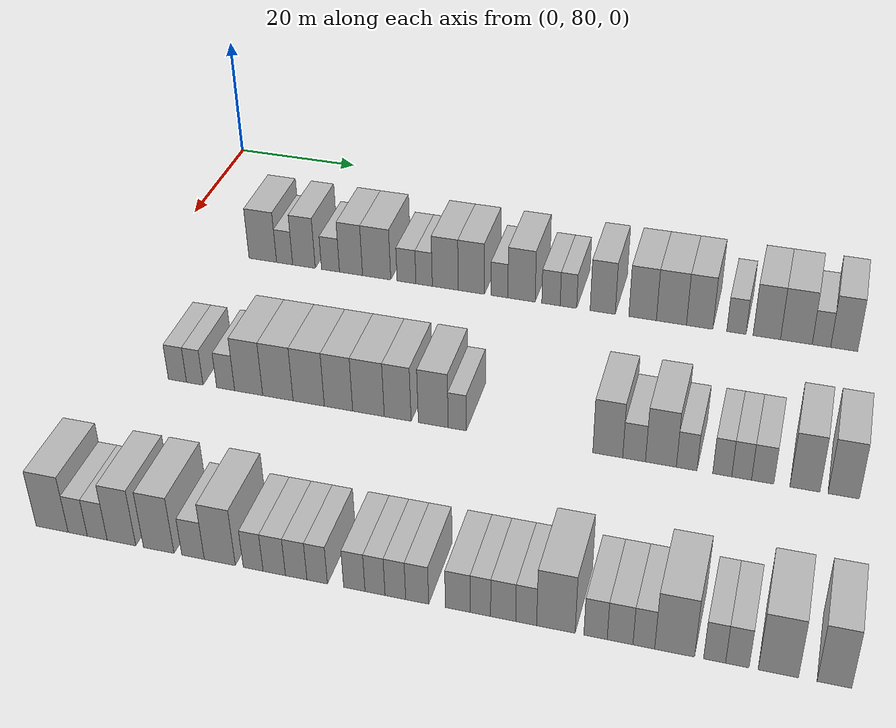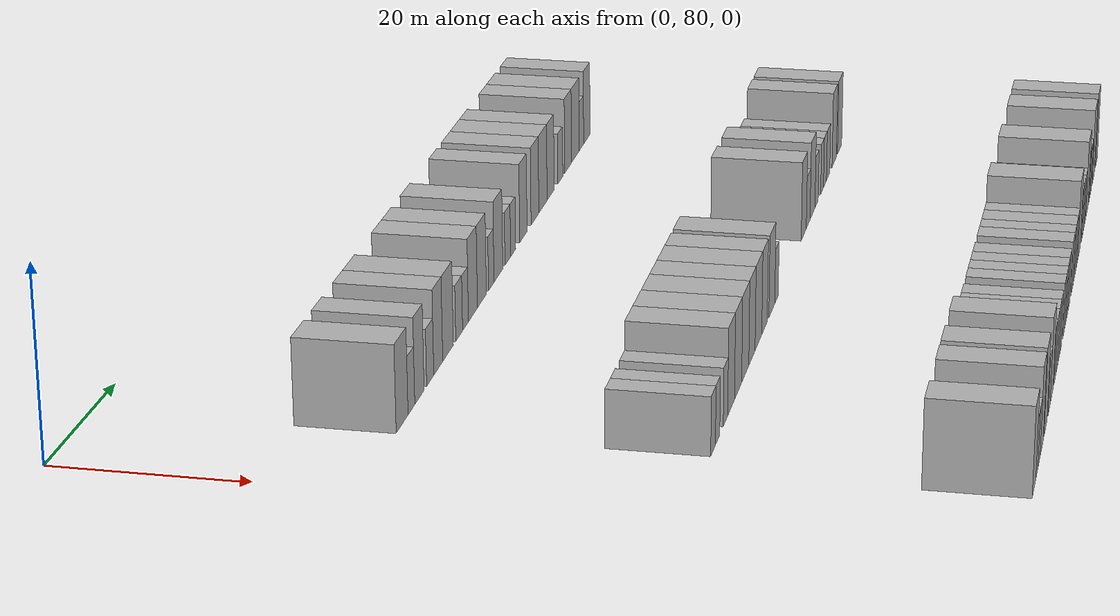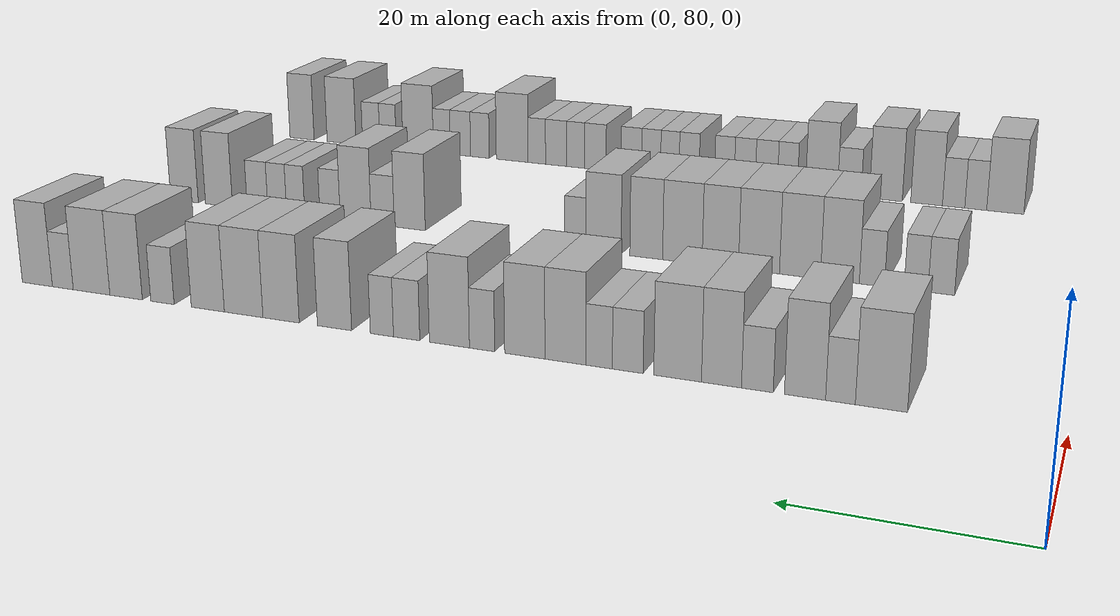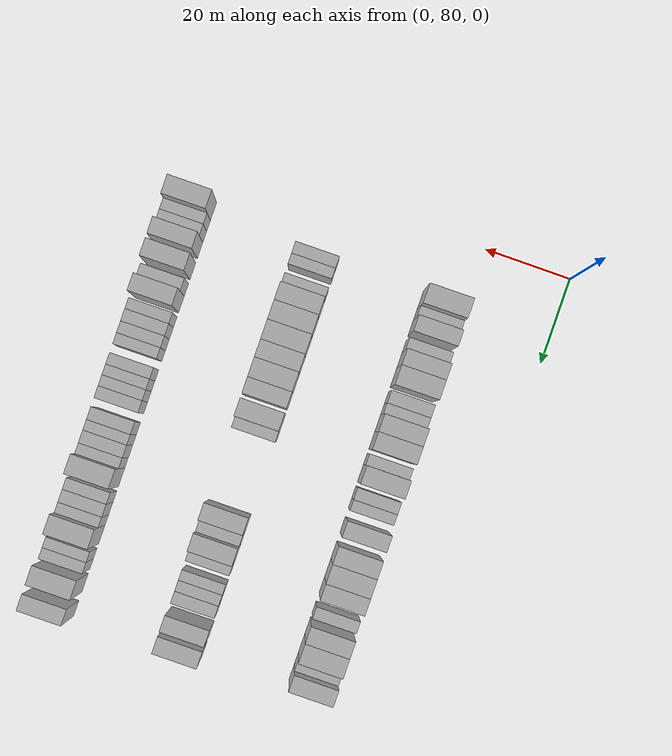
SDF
<sdf version="1.6">
 <world name="default">
  <model name="building_97">
   <static>1</static>
   <pose>25.0000 95.4929 0 0.000000 0.000000 0.000000</pose>
   <link name="link">
    <pose>0 0 4.50 0 0 0</pose>
    <collision name="collision"><geometry><box><size>10.0000 4.4815 9.0000</size></box></geometry></collision>
    <visual name="visual">
     <cast_shadows>0</cast_shadows>
     <geometry><box><size>10.0000 4.4815 9.0000</size></box></geometry>
     <material>
      <script>
       <uri>model://HANNAS_wall/materials/scripts</uri>
       <uri>model://HANNAS_wall/materials/textures</uri>
       <name>vrc/HANNAS_wall</name>
      </script>
     </material>
    </visual>
   </link>
  </model>
  <model name="building_98">
   <static>1</static>
   <pose>25.0000 99.0332 0 0.000000 0.000000 0.000000</pose>
   <link name="link">
    <pose>0 0 3.00 0 0 0</pose>
    <collision name="collision"><geometry><box><size>10.0000 2.5991 6.0000</size></box></geometry></collision>
    <visual name="visual">
     <cast_shadows>0</cast_shadows>
     <geometry><box><size>10.0000 2.5991 6.0000</size></box></geometry>
     <material>
      <script>
       <uri>model://HANNAS_wall/materials/scripts</uri>
       <uri>model://HANNAS_wall/materials/textures</uri>
       <name>vrc/HANNAS_wall</name>
      </script>
     </material>
    </visual>
   </link>
  </model>
  <model name="building_99">
   <static>1</static>
   <pose>25.0000 102.1553 0 0.000000 0.000000 0.000000</pose>
   <link name="link">
    <pose>0 0 4.50 0 0 0</pose>
    <collision name="collision"><geometry><box><size>10.0000 3.6450 9.0000</size></box></geometry></collision>
    <visual name="visual">
     <cast_shadows>0</cast_shadows>
     <geometry><box><size>10.0000 3.6450 9.0000</size></box></geometry>
     <material>
      <script>
       <uri>model://HANNAS_wall/materials/scripts</uri>
       <uri>model://HANNAS_wall/materials/textures</uri>
       <name>vrc/HANNAS_wall</name>
      </script>
     </material>
    </visual>
   </link>
  </model>
  <model name="building_100">
   <static>1</static>
   <pose>25.0000 106.4135 0 0.000000 0.000000 0.000000</pose>
   <link name="link">
    <pose>0 0 3.00 0 0 0</pose>
    <collision name="collision"><geometry><box><size>10.0000 2.8715 6.0000</size></box></geometry></collision>
    <visual name="visual">
     <cast_shadows>0</cast_shadows>
     <geometry><box><size>10.0000 2.8715 6.0000</size></box></geometry>
     <material>
      <script>
       <uri>model://HANNAS_wall/materials/scripts</uri>
       <uri>model://HANNAS_wall/materials/textures</uri>
       <name>vrc/HANNAS_wall</name>
      </script>
     </material>
    </visual>
   </link>
  </model>
  <model name="building_101">
   <static>1</static>
   <pose>25.0000 109.6818 0 0.000000 0.000000 0.000000</pose>
   <link name="link">
    <pose>0 0 4.50 0 0 0</pose>
    <collision name="collision"><geometry><box><size>10.0000 3.6650 9.0000</size></box></geometry></collision>
    <visual name="visual">
     <cast_shadows>0</cast_shadows>
     <geometry><box><size>10.0000 3.6650 9.0000</size></box></geometry>
     <material>
      <script>
       <uri>model://HANNAS_wall/materials/scripts</uri>
       <uri>model://HANNAS_wall/materials/textures</uri>
       <name>vrc/HANNAS_wall</name>
      </script>
     </material>
    </visual>
   </link>
  </model>
  <model name="building_102">
   <static>1</static>
   <pose>25.0000 113.7404 0 0.000000 0.000000 0.000000</pose>
   <link name="link">
    <pose>0 0 4.50 0 0 0</pose>
    <collision name="collision"><geometry><box><size>10.0000 4.4522 9.0000</size></box></geometry></collision>
    <visual name="visual">
     <cast_shadows>0</cast_shadows>
     <geometry><box><size>10.0000 4.4522 9.0000</size></box></geometry>
     <material>
      <script>
       <uri>model://HANNAS_wall/materials/scripts</uri>
       <uri>model://HANNAS_wall/materials/textures</uri>
       <name>vrc/HANNAS_wall</name>
      </script>
     </material>
    </visual>
   </link>
  </model>
  <model name="building_103">
   <static>1</static>
   <pose>25.0000 118.4379 0 0.000000 0.000000 0.000000</pose>
   <link name="link">
    <pose>0 0 3.00 0 0 0</pose>
    <collision name="collision"><geometry><box><size>10.0000 2.9428 6.0000</size></box></geometry></collision>
    <visual name="visual">
     <cast_shadows>0</cast_shadows>
     <geometry><box><size>10.0000 2.9428 6.0000</size></box></geometry>
     <material>
      <script>
       <uri>model://HANNAS_wall/materials/scripts</uri>
       <uri>model://HANNAS_wall/materials/textures</uri>
       <name>vrc/HANNAS_wall</name>
      </script>
     </material>
    </visual>
   </link>
  </model>
  <model name="building_104">
   <static>1</static>
   <pose>25.0000 121.1843 0 0.000000 0.000000 0.000000</pose>
   <link name="link">
    <pose>0 0 3.00 0 0 0</pose>
    <collision name="collision"><geometry><box><size>10.0000 2.5500 6.0000</size></box></geometry></collision>
    <visual name="visual">
     <cast_shadows>0</cast_shadows>
     <geometry><box><size>10.0000 2.5500 6.0000</size></box></geometry>
     <material>
      <script>
       <uri>model://HANNAS_wall/materials/scripts</uri>
       <uri>model://HANNAS_wall/materials/textures</uri>
       <name>vrc/HANNAS_wall</name>
      </script>
     </material>
    </visual>
   </link>
  </model>
  <model name="building_105">
   <static>1</static>
   <pose>25.0000 124.4643 0 0.000000 0.000000 0.000000</pose>
   <link name="link">
    <pose>0 0 4.50 0 0 0</pose>
    <collision name="collision"><geometry><box><size>10.0000 4.0100 9.0000</size></box></geometry></collision>
    <visual name="visual">
     <cast_shadows>0</cast_shadows>
     <geometry><box><size>10.0000 4.0100 9.0000</size></box></geometry>
     <material>
      <script>
       <uri>model://HANNAS_wall/materials/scripts</uri>
       <uri>model://HANNAS_wall/materials/textures</uri>
       <name>vrc/HANNAS_wall</name>
      </script>
     </material>
    </visual>
   </link>
  </model>
  <model name="building_106">
   <static>1</static>
   <pose>25.0000 128.4780 0 0.000000 0.000000 0.000000</pose>
   <link name="link">
    <pose>0 0 4.50 0 0 0</pose>
    <collision name="collision"><geometry><box><size>10.0000 4.0174 9.0000</size></box></geometry></collision>
    <visual name="visual">
     <cast_shadows>0</cast_shadows>
     <geometry><box><size>10.0000 4.0174 9.0000</size></box></geometry>
     <material>
      <script>
       <uri>model://HANNAS_wall/materials/scripts</uri>
       <uri>model://HANNAS_wall/materials/textures</uri>
       <name>vrc/HANNAS_wall</name>
      </script>
     </material>
    </visual>
   </link>
  </model>
  <model name="building_107">
   <static>1</static>
   <pose>25.0000 132.7698 0 0.000000 0.000000 0.000000</pose>
   <link name="link">
    <pose>0 0 3.00 0 0 0</pose>
    <collision name="collision"><geometry><box><size>10.0000 2.5663 6.0000</size></box></geometry></collision>
    <visual name="visual">
     <cast_shadows>0</cast_shadows>
     <geometry><box><size>10.0000 2.5663 6.0000</size></box></geometry>
     <material>
      <script>
       <uri>model://HANNAS_wall/materials/scripts</uri>
       <uri>model://HANNAS_wall/materials/textures</uri>
       <name>vrc/HANNAS_wall</name>
      </script>
     </material>
    </visual>
   </link>
  </model>
  <model name="building_108">
   <static>1</static>
   <pose>25.0000 136.1165 0 0.000000 0.000000 0.000000</pose>
   <link name="link">
    <pose>0 0 4.50 0 0 0</pose>
    <collision name="collision"><geometry><box><size>10.0000 4.1270 9.0000</size></box></geometry></collision>
    <visual name="visual">
     <cast_shadows>0</cast_shadows>
     <geometry><box><size>10.0000 4.1270 9.0000</size></box></geometry>
     <material>
      <script>
       <uri>model://HANNAS_wall/materials/scripts</uri>
       <uri>model://HANNAS_wall/materials/textures</uri>
       <name>vrc/HANNAS_wall</name>
      </script>
     </material>
    </visual>
   </link>
  </model>
  <model name="building_109">
   <static>1</static>
   <pose>25.0000 140.5596 0 0.000000 0.000000 0.000000</pose>
   <link name="link">
    <pose>0 0 3.00 0 0 0</pose>
    <collision name="collision"><geometry><box><size>10.0000 2.7591 6.0000</size></box></geometry></collision>
    <visual name="visual">
     <cast_shadows>0</cast_shadows>
     <geometry><box><size>10.0000 2.7591 6.0000</size></box></geometry>
     <material>
      <script>
       <uri>model://HANNAS_wall/materials/scripts</uri>
       <uri>model://HANNAS_wall/materials/textures</uri>
       <name>vrc/HANNAS_wall</name>
      </script>
     </material>
    </visual>
   </link>
  </model>
  <model name="building_110">
   <static>1</static>
   <pose>25.0000 143.1696 0 0.000000 0.000000 0.000000</pose>
   <link name="link">
    <pose>0 0 3.00 0 0 0</pose>
    <collision name="collision"><geometry><box><size>10.0000 2.4609 6.0000</size></box></geometry></collision>
    <visual name="visual">
     <cast_shadows>0</cast_shadows>
     <geometry><box><size>10.0000 2.4609 6.0000</size></box></geometry>
     <material>
      <script>
       <uri>model://HANNAS_wall/materials/scripts</uri>
       <uri>model://HANNAS_wall/materials/textures</uri>
       <name>vrc/HANNAS_wall</name>
      </script>
     </material>
    </visual>
   </link>
  </model>
  <model name="building_111">
   <static>1</static>
   <pose>25.0000 148.2564 0 0.000000 0.000000 0.000000</pose>
   <link name="link">
    <pose>0 0 4.50 0 0 0</pose>
    <collision name="collision"><geometry><box><size>10.0000 3.7127 9.0000</size></box></geometry></collision>
    <visual name="visual">
     <cast_shadows>0</cast_shadows>
     <geometry><box><size>10.0000 3.7127 9.0000</size></box></geometry>
     <material>
      <script>
       <uri>model://HANNAS_wall/materials/scripts</uri>
       <uri>model://HANNAS_wall/materials/textures</uri>
       <name>vrc/HANNAS_wall</name>
      </script>
     </material>
    </visual>
   </link>
  </model>
  <model name="building_112">
   <static>1</static>
   <pose>25.0000 154.1282 0 0.000000 0.000000 0.000000</pose>
   <link name="link">
    <pose>0 0 4.50 0 0 0</pose>
    <collision name="collision"><geometry><box><size>10.0000 4.0309 9.0000</size></box></geometry></collision>
    <visual name="visual">
     <cast_shadows>0</cast_shadows>
     <geometry><box><size>10.0000 4.0309 9.0000</size></box></geometry>
     <material>
      <script>
       <uri>model://HANNAS_wall/materials/scripts</uri>
       <uri>model://HANNAS_wall/materials/textures</uri>
       <name>vrc/HANNAS_wall</name>
      </script>
     </material>
    </visual>
   </link>
  </model>
  <model name="building_113">
   <static>1</static>
   <pose>25.0000 158.3235 0 0.000000 0.000000 0.000000</pose>
   <link name="link">
    <pose>0 0 4.50 0 0 0</pose>
    <collision name="collision"><geometry><box><size>10.0000 4.3597 9.0000</size></box></geometry></collision>
    <visual name="visual">
     <cast_shadows>0</cast_shadows>
     <geometry><box><size>10.0000 4.3597 9.0000</size></box></geometry>
     <material>
      <script>
       <uri>model://HANNAS_wall/materials/scripts</uri>
       <uri>model://HANNAS_wall/materials/textures</uri>
       <name>vrc/HANNAS_wall</name>
      </script>
     </material>
    </visual>
   </link>
  </model>
  <model name="building_114">
   <static>1</static>
   <pose>25.0000 162.4061 0 0.000000 0.000000 0.000000</pose>
   <link name="link">
    <pose>0 0 4.50 0 0 0</pose>
    <collision name="collision"><geometry><box><size>10.0000 3.8055 9.0000</size></box></geometry></collision>
    <visual name="visual">
     <cast_shadows>0</cast_shadows>
     <geometry><box><size>10.0000 3.8055 9.0000</size></box></geometry>
     <material>
      <script>
       <uri>model://HANNAS_wall/materials/scripts</uri>
       <uri>model://HANNAS_wall/materials/textures</uri>
       <name>vrc/HANNAS_wall</name>
      </script>
     </material>
    </visual>
   </link>
  </model>
  <model name="building_115">
   <static>1</static>
   <pose>25.0000 167.6796 0 0.000000 0.000000 0.000000</pose>
   <link name="link">
    <pose>0 0 3.00 0 0 0</pose>
    <collision name="collision"><geometry><box><size>10.0000 2.7415 6.0000</size></box></geometry></collision>
    <visual name="visual">
     <cast_shadows>0</cast_shadows>
     <geometry><box><size>10.0000 2.7415 6.0000</size></box></geometry>
     <material>
      <script>
       <uri>model://HANNAS_wall/materials/scripts</uri>
       <uri>model://HANNAS_wall/materials/textures</uri>
       <name>vrc/HANNAS_wall</name>
      </script>
     </material>
    </visual>
   </link>
  </model>
  <model name="building_116">
   <static>1</static>
   <pose>25.0000 171.9883 0 0.000000 0.000000 0.000000</pose>
   <link name="link">
    <pose>0 0 4.50 0 0 0</pose>
    <collision name="collision"><geometry><box><size>10.0000 3.8760 9.0000</size></box></geometry></collision>
    <visual name="visual">
     <cast_shadows>0</cast_shadows>
     <geometry><box><size>10.0000 3.8760 9.0000</size></box></geometry>
     <material>
      <script>
       <uri>model://HANNAS_wall/materials/scripts</uri>
       <uri>model://HANNAS_wall/materials/textures</uri>
       <name>vrc/HANNAS_wall</name>
      </script>
     </material>
    </visual>
   </link>
  </model>
  <model name="building_117">
   <static>1</static>
   <pose>25.0000 176.1489 0 0.000000 0.000000 0.000000</pose>
   <link name="link">
    <pose>0 0 4.50 0 0 0</pose>
    <collision name="collision"><geometry><box><size>10.0000 4.4451 9.0000</size></box></geometry></collision>
    <visual name="visual">
     <cast_shadows>0</cast_shadows>
     <geometry><box><size>10.0000 4.4451 9.0000</size></box></geometry>
     <material>
      <script>
       <uri>model://HANNAS_wall/materials/scripts</uri>
       <uri>model://HANNAS_wall/materials/textures</uri>
       <name>vrc/HANNAS_wall</name>
      </script>
     </material>
    </visual>
   </link>
  </model>
  <model name="building_118">
   <static>1</static>
   <pose>25.0000 179.6565 0 0.000000 0.000000 0.000000</pose>
   <link name="link">
    <pose>0 0 3.00 0 0 0</pose>
    <collision name="collision"><geometry><box><size>10.0000 2.5702 6.0000</size></box></geometry></collision>
    <visual name="visual">
     <cast_shadows>0</cast_shadows>
     <geometry><box><size>10.0000 2.5702 6.0000</size></box></geometry>
     <material>
      <script>
       <uri>model://HANNAS_wall/materials/scripts</uri>
       <uri>model://HANNAS_wall/materials/textures</uri>
       <name>vrc/HANNAS_wall</name>
      </script>
     </material>
    </visual>
   </link>
  </model>
  <model name="building_119">
   <static>1</static>
   <pose>25.0000 182.8142 0 0.000000 0.000000 0.000000</pose>
   <link name="link">
    <pose>0 0 4.50 0 0 0</pose>
    <collision name="collision"><geometry><box><size>10.0000 3.7452 9.0000</size></box></geometry></collision>
    <visual name="visual">
     <cast_shadows>0</cast_shadows>
     <geometry><box><size>10.0000 3.7452 9.0000</size></box></geometry>
     <material>
      <script>
       <uri>model://HANNAS_wall/materials/scripts</uri>
       <uri>model://HANNAS_wall/materials/textures</uri>
       <name>vrc/HANNAS_wall</name>
      </script>
     </material>
    </visual>
   </link>
  </model>
  <model name="building_237">
   <static>1</static>
   <pose>55.0000 94.8463 0 0.000000 0.000000 0.000000</pose>
   <link name="link">
    <pose>0 0 3.00 0 0 0</pose>
    <collision name="collision"><geometry><box><size>10.0000 2.6816 6.0000</size></box></geometry></collision>
    <visual name="visual">
     <cast_shadows>0</cast_shadows>
     <geometry><box><size>10.0000 2.6816 6.0000</size></box></geometry>
     <material>
      <script>
       <uri>model://HANNAS_wall/materials/scripts</uri>
       <uri>model://HANNAS_wall/materials/textures</uri>
       <name>vrc/HANNAS_wall</name>
      </script>
     </material>
    </visual>
   </link>
  </model>
  <model name="building_238">
   <static>1</static>
   <pose>55.0000 97.4032 0 0.000000 0.000000 0.000000</pose>
   <link name="link">
    <pose>0 0 3.00 0 0 0</pose>
    <collision name="collision"><geometry><box><size>10.0000 2.4321 6.0000</size></box></geometry></collision>
    <visual name="visual">
     <cast_shadows>0</cast_shadows>
     <geometry><box><size>10.0000 2.4321 6.0000</size></box></geometry>
     <material>
      <script>
       <uri>model://HANNAS_wall/materials/scripts</uri>
       <uri>model://HANNAS_wall/materials/textures</uri>
       <name>vrc/HANNAS_wall</name>
      </script>
     </material>
    </visual>
   </link>
  </model>
  <model name="building_239">
   <static>1</static>
   <pose>55.0000 101.9302 0 0.000000 0.000000 0.000000</pose>
   <link name="link">
    <pose>0 0 3.00 0 0 0</pose>
    <collision name="collision"><geometry><box><size>10.0000 2.6219 6.0000</size></box></geometry></collision>
    <visual name="visual">
     <cast_shadows>0</cast_shadows>
     <geometry><box><size>10.0000 2.6219 6.0000</size></box></geometry>
     <material>
      <script>
       <uri>model://HANNAS_wall/materials/scripts</uri>
       <uri>model://HANNAS_wall/materials/textures</uri>
       <name>vrc/HANNAS_wall</name>
      </script>
     </material>
    </visual>
   </link>
  </model>
  <model name="building_240">
   <static>1</static>
   <pose>55.0000 105.2764 0 0.000000 0.000000 0.000000</pose>
   <link name="link">
    <pose>0 0 4.50 0 0 0</pose>
    <collision name="collision"><geometry><box><size>10.0000 4.0706 9.0000</size></box></geometry></collision>
    <visual name="visual">
     <cast_shadows>0</cast_shadows>
     <geometry><box><size>10.0000 4.0706 9.0000</size></box></geometry>
     <material>
      <script>
       <uri>model://HANNAS_wall/materials/scripts</uri>
       <uri>model://HANNAS_wall/materials/textures</uri>
       <name>vrc/HANNAS_wall</name>
      </script>
     </material>
    </visual>
   </link>
  </model>
  <model name="building_241">
   <static>1</static>
   <pose>55.0000 109.4968 0 0.000000 0.000000 0.000000</pose>
   <link name="link">
    <pose>0 0 4.50 0 0 0</pose>
    <collision name="collision"><geometry><box><size>10.0000 4.3702 9.0000</size></box></geometry></collision>
    <visual name="visual">
     <cast_shadows>0</cast_shadows>
     <geometry><box><size>10.0000 4.3702 9.0000</size></box></geometry>
     <material>
      <script>
       <uri>model://HANNAS_wall/materials/scripts</uri>
       <uri>model://HANNAS_wall/materials/textures</uri>
       <name>vrc/HANNAS_wall</name>
      </script>
     </material>
    </visual>
   </link>
  </model>
  <model name="building_242">
   <static>1</static>
   <pose>55.0000 113.9034 0 0.000000 0.000000 0.000000</pose>
   <link name="link">
    <pose>0 0 4.50 0 0 0</pose>
    <collision name="collision"><geometry><box><size>10.0000 4.4429 9.0000</size></box></geometry></collision>
    <visual name="visual">
     <cast_shadows>0</cast_shadows>
     <geometry><box><size>10.0000 4.4429 9.0000</size></box></geometry>
     <material>
      <script>
       <uri>model://HANNAS_wall/materials/scripts</uri>
       <uri>model://HANNAS_wall/materials/textures</uri>
       <name>vrc/HANNAS_wall</name>
      </script>
     </material>
    </visual>
   </link>
  </model>
  <model name="building_243">
   <static>1</static>
   <pose>55.0000 118.1273 0 0.000000 0.000000 0.000000</pose>
   <link name="link">
    <pose>0 0 4.50 0 0 0</pose>
    <collision name="collision"><geometry><box><size>10.0000 4.0051 9.0000</size></box></geometry></collision>
    <visual name="visual">
     <cast_shadows>0</cast_shadows>
     <geometry><box><size>10.0000 4.0051 9.0000</size></box></geometry>
     <material>
      <script>
       <uri>model://HANNAS_wall/materials/scripts</uri>
       <uri>model://HANNAS_wall/materials/textures</uri>
       <name>vrc/HANNAS_wall</name>
      </script>
     </material>
    </visual>
   </link>
  </model>
  <model name="building_244">
   <static>1</static>
   <pose>55.0000 122.3404 0 0.000000 0.000000 0.000000</pose>
   <link name="link">
    <pose>0 0 4.50 0 0 0</pose>
    <collision name="collision"><geometry><box><size>10.0000 4.4209 9.0000</size></box></geometry></collision>
    <visual name="visual">
     <cast_shadows>0</cast_shadows>
     <geometry><box><size>10.0000 4.4209 9.0000</size></box></geometry>
     <material>
      <script>
       <uri>model://HANNAS_wall/materials/scripts</uri>
       <uri>model://HANNAS_wall/materials/textures</uri>
       <name>vrc/HANNAS_wall</name>
      </script>
     </material>
    </visual>
   </link>
  </model>
  <model name="building_245">
   <static>1</static>
   <pose>55.0000 126.4128 0 0.000000 0.000000 0.000000</pose>
   <link name="link">
    <pose>0 0 4.50 0 0 0</pose>
    <collision name="collision"><geometry><box><size>10.0000 3.7238 9.0000</size></box></geometry></collision>
    <visual name="visual">
     <cast_shadows>0</cast_shadows>
     <geometry><box><size>10.0000 3.7238 9.0000</size></box></geometry>
     <material>
      <script>
       <uri>model://HANNAS_wall/materials/scripts</uri>
       <uri>model://HANNAS_wall/materials/textures</uri>
       <name>vrc/HANNAS_wall</name>
      </script>
     </material>
    </visual>
   </link>
  </model>
  <model name="building_246">
   <static>1</static>
   <pose>55.0000 131.3239 0 0.000000 0.000000 0.000000</pose>
   <link name="link">
    <pose>0 0 4.50 0 0 0</pose>
    <collision name="collision"><geometry><box><size>10.0000 4.0984 9.0000</size></box></geometry></collision>
    <visual name="visual">
     <cast_shadows>0</cast_shadows>
     <geometry><box><size>10.0000 4.0984 9.0000</size></box></geometry>
     <material>
      <script>
       <uri>model://HANNAS_wall/materials/scripts</uri>
       <uri>model://HANNAS_wall/materials/textures</uri>
       <name>vrc/HANNAS_wall</name>
      </script>
     </material>
    </visual>
   </link>
  </model>
  <model name="building_247">
   <static>1</static>
   <pose>55.0000 134.6099 0 0.000000 0.000000 0.000000</pose>
   <link name="link">
    <pose>0 0 3.00 0 0 0</pose>
    <collision name="collision"><geometry><box><size>10.0000 2.4736 6.0000</size></box></geometry></collision>
    <visual name="visual">
     <cast_shadows>0</cast_shadows>
     <geometry><box><size>10.0000 2.4736 6.0000</size></box></geometry>
     <material>
      <script>
       <uri>model://HANNAS_wall/materials/scripts</uri>
       <uri>model://HANNAS_wall/materials/textures</uri>
       <name>vrc/HANNAS_wall</name>
      </script>
     </material>
    </visual>
   </link>
  </model>
  <model name="building_248">
   <static>1</static>
   <pose>55.0000 154.7026 0 0.000000 0.000000 0.000000</pose>
   <link name="link">
    <pose>0 0 4.50 0 0 0</pose>
    <collision name="collision"><geometry><box><size>10.0000 3.9040 9.0000</size></box></geometry></collision>
    <visual name="visual">
     <cast_shadows>0</cast_shadows>
     <geometry><box><size>10.0000 3.9040 9.0000</size></box></geometry>
     <material>
      <script>
       <uri>model://HANNAS_wall/materials/scripts</uri>
       <uri>model://HANNAS_wall/materials/textures</uri>
       <name>vrc/HANNAS_wall</name>
      </script>
     </material>
    </visual>
   </link>
  </model>
  <model name="building_249">
   <static>1</static>
   <pose>55.0000 158.1288 0 0.000000 0.000000 0.000000</pose>
   <link name="link">
    <pose>0 0 3.00 0 0 0</pose>
    <collision name="collision"><geometry><box><size>10.0000 2.9484 6.0000</size></box></geometry></collision>
    <visual name="visual">
     <cast_shadows>0</cast_shadows>
     <geometry><box><size>10.0000 2.9484 6.0000</size></box></geometry>
     <material>
      <script>
       <uri>model://HANNAS_wall/materials/scripts</uri>
       <uri>model://HANNAS_wall/materials/textures</uri>
       <name>vrc/HANNAS_wall</name>
      </script>
     </material>
    </visual>
   </link>
  </model>
  <model name="building_250">
   <static>1</static>
   <pose>55.0000 161.5967 0 0.000000 0.000000 0.000000</pose>
   <link name="link">
    <pose>0 0 4.50 0 0 0</pose>
    <collision name="collision"><geometry><box><size>10.0000 3.9873 9.0000</size></box></geometry></collision>
    <visual name="visual">
     <cast_shadows>0</cast_shadows>
     <geometry><box><size>10.0000 3.9873 9.0000</size></box></geometry>
     <material>
      <script>
       <uri>model://HANNAS_wall/materials/scripts</uri>
       <uri>model://HANNAS_wall/materials/textures</uri>
       <name>vrc/HANNAS_wall</name>
      </script>
     </material>
    </visual>
   </link>
  </model>
  <model name="building_251">
   <static>1</static>
   <pose>55.0000 164.9107 0 0.000000 0.000000 0.000000</pose>
   <link name="link">
    <pose>0 0 3.00 0 0 0</pose>
    <collision name="collision"><geometry><box><size>10.0000 2.6406 6.0000</size></box></geometry></collision>
    <visual name="visual">
     <cast_shadows>0</cast_shadows>
     <geometry><box><size>10.0000 2.6406 6.0000</size></box></geometry>
     <material>
      <script>
       <uri>model://HANNAS_wall/materials/scripts</uri>
       <uri>model://HANNAS_wall/materials/textures</uri>
       <name>vrc/HANNAS_wall</name>
      </script>
     </material>
    </visual>
   </link>
  </model>
  <model name="building_252">
   <static>1</static>
   <pose>55.0000 169.4337 0 0.000000 0.000000 0.000000</pose>
   <link name="link">
    <pose>0 0 3.00 0 0 0</pose>
    <collision name="collision"><geometry><box><size>10.0000 2.4055 6.0000</size></box></geometry></collision>
    <visual name="visual">
     <cast_shadows>0</cast_shadows>
     <geometry><box><size>10.0000 2.4055 6.0000</size></box></geometry>
     <material>
      <script>
       <uri>model://HANNAS_wall/materials/scripts</uri>
       <uri>model://HANNAS_wall/materials/textures</uri>
       <name>vrc/HANNAS_wall</name>
      </script>
     </material>
    </visual>
   </link>
  </model>
  <model name="building_253">
   <static>1</static>
   <pose>55.0000 171.8856 0 0.000000 0.000000 0.000000</pose>
   <link name="link">
    <pose>0 0 3.00 0 0 0</pose>
    <collision name="collision"><geometry><box><size>10.0000 2.4983 6.0000</size></box></geometry></collision>
    <visual name="visual">
     <cast_shadows>0</cast_shadows>
     <geometry><box><size>10.0000 2.4983 6.0000</size></box></geometry>
     <material>
      <script>
       <uri>model://HANNAS_wall/materials/scripts</uri>
       <uri>model://HANNAS_wall/materials/textures</uri>
       <name>vrc/HANNAS_wall</name>
      </script>
     </material>
    </visual>
   </link>
  </model>
  <model name="building_254">
   <static>1</static>
   <pose>55.0000 174.5311 0 0.000000 0.000000 0.000000</pose>
   <link name="link">
    <pose>0 0 3.00 0 0 0</pose>
    <collision name="collision"><geometry><box><size>10.0000 2.7928 6.0000</size></box></geometry></collision>
    <visual name="visual">
     <cast_shadows>0</cast_shadows>
     <geometry><box><size>10.0000 2.7928 6.0000</size></box></geometry>
     <material>
      <script>
       <uri>model://HANNAS_wall/materials/scripts</uri>
       <uri>model://HANNAS_wall/materials/textures</uri>
       <name>vrc/HANNAS_wall</name>
      </script>
     </material>
    </visual>
   </link>
  </model>
  <model name="building_255">
   <static>1</static>
   <pose>55.0000 179.7887 0 0.000000 0.000000 0.000000</pose>
   <link name="link">
    <pose>0 0 4.50 0 0 0</pose>
    <collision name="collision"><geometry><box><size>10.0000 3.7223 9.0000</size></box></geometry></collision>
    <visual name="visual">
     <cast_shadows>0</cast_shadows>
     <geometry><box><size>10.0000 3.7223 9.0000</size></box></geometry>
     <material>
      <script>
       <uri>model://HANNAS_wall/materials/scripts</uri>
       <uri>model://HANNAS_wall/materials/textures</uri>
       <name>vrc/HANNAS_wall</name>
      </script>
     </material>
    </visual>
   </link>
  </model>
  <model name="building_256">
   <static>1</static>
   <pose>55.0000 184.5702 0 0.000000 0.000000 0.000000</pose>
   <link name="link">
    <pose>0 0 4.50 0 0 0</pose>
    <collision name="collision"><geometry><box><size>10.0000 3.8405 9.0000</size></box></geometry></collision>
    <visual name="visual">
     <cast_shadows>0</cast_shadows>
     <geometry><box><size>10.0000 3.8405 9.0000</size></box></geometry>
     <material>
      <script>
       <uri>model://HANNAS_wall/materials/scripts</uri>
       <uri>model://HANNAS_wall/materials/textures</uri>
       <name>vrc/HANNAS_wall</name>
      </script>
     </material>
    </visual>
   </link>
  </model>
  <model name="building_372">
   <static>1</static>
   <pose>85.0000 91.8605 0 0.000000 0.000000 0.000000</pose>
   <link name="link">
    <pose>0 0 4.50 0 0 0</pose>
    <collision name="collision"><geometry><box><size>10.0000 4.2594 9.0000</size></box></geometry></collision>
    <visual name="visual">
     <cast_shadows>0</cast_shadows>
     <geometry><box><size>10.0000 4.2594 9.0000</size></box></geometry>
     <material>
      <script>
       <uri>model://HANNAS_wall/materials/scripts</uri>
       <uri>model://HANNAS_wall/materials/textures</uri>
       <name>vrc/HANNAS_wall</name>
      </script>
     </material>
    </visual>
   </link>
  </model>
  <model name="building_373">
   <static>1</static>
   <pose>85.0000 95.2567 0 0.000000 0.000000 0.000000</pose>
   <link name="link">
    <pose>0 0 3.00 0 0 0</pose>
    <collision name="collision"><geometry><box><size>10.0000 2.5328 6.0000</size></box></geometry></collision>
    <visual name="visual">
     <cast_shadows>0</cast_shadows>
     <geometry><box><size>10.0000 2.5328 6.0000</size></box></geometry>
     <material>
      <script>
       <uri>model://HANNAS_wall/materials/scripts</uri>
       <uri>model://HANNAS_wall/materials/textures</uri>
       <name>vrc/HANNAS_wall</name>
      </script>
     </material>
    </visual>
   </link>
  </model>
  <model name="building_374">
   <static>1</static>
   <pose>85.0000 97.8348 0 0.000000 0.000000 0.000000</pose>
   <link name="link">
    <pose>0 0 3.00 0 0 0</pose>
    <collision name="collision"><geometry><box><size>10.0000 2.6234 6.0000</size></box></geometry></collision>
    <visual name="visual">
     <cast_shadows>0</cast_shadows>
     <geometry><box><size>10.0000 2.6234 6.0000</size></box></geometry>
     <material>
      <script>
       <uri>model://HANNAS_wall/materials/scripts</uri>
       <uri>model://HANNAS_wall/materials/textures</uri>
       <name>vrc/HANNAS_wall</name>
      </script>
     </material>
    </visual>
   </link>
  </model>
  <model name="building_375">
   <static>1</static>
   <pose>85.0000 101.0239 0 0.000000 0.000000 0.000000</pose>
   <link name="link">
    <pose>0 0 4.50 0 0 0</pose>
    <collision name="collision"><geometry><box><size>10.0000 3.7548 9.0000</size></box></geometry></collision>
    <visual name="visual">
     <cast_shadows>0</cast_shadows>
     <geometry><box><size>10.0000 3.7548 9.0000</size></box></geometry>
     <material>
      <script>
       <uri>model://HANNAS_wall/materials/scripts</uri>
       <uri>model://HANNAS_wall/materials/textures</uri>
       <name>vrc/HANNAS_wall</name>
      </script>
     </material>
    </visual>
   </link>
  </model>
  <model name="building_376">
   <static>1</static>
   <pose>85.0000 105.8829 0 0.000000 0.000000 0.000000</pose>
   <link name="link">
    <pose>0 0 4.50 0 0 0</pose>
    <collision name="collision"><geometry><box><size>10.0000 3.9631 9.0000</size></box></geometry></collision>
    <visual name="visual">
     <cast_shadows>0</cast_shadows>
     <geometry><box><size>10.0000 3.9631 9.0000</size></box></geometry>
     <material>
      <script>
       <uri>model://HANNAS_wall/materials/scripts</uri>
       <uri>model://HANNAS_wall/materials/textures</uri>
       <name>vrc/HANNAS_wall</name>
      </script>
     </material>
    </visual>
   </link>
  </model>
  <model name="building_377">
   <static>1</static>
   <pose>85.0000 110.3048 0 0.000000 0.000000 0.000000</pose>
   <link name="link">
    <pose>0 0 3.00 0 0 0</pose>
    <collision name="collision"><geometry><box><size>10.0000 2.8808 6.0000</size></box></geometry></collision>
    <visual name="visual">
     <cast_shadows>0</cast_shadows>
     <geometry><box><size>10.0000 2.8808 6.0000</size></box></geometry>
     <material>
      <script>
       <uri>model://HANNAS_wall/materials/scripts</uri>
       <uri>model://HANNAS_wall/materials/textures</uri>
       <name>vrc/HANNAS_wall</name>
      </script>
     </material>
    </visual>
   </link>
  </model>
  <model name="building_378">
   <static>1</static>
   <pose>85.0000 113.7215 0 0.000000 0.000000 0.000000</pose>
   <link name="link">
    <pose>0 0 4.50 0 0 0</pose>
    <collision name="collision"><geometry><box><size>10.0000 3.9526 9.0000</size></box></geometry></collision>
    <visual name="visual">
     <cast_shadows>0</cast_shadows>
     <geometry><box><size>10.0000 3.9526 9.0000</size></box></geometry>
     <material>
      <script>
       <uri>model://HANNAS_wall/materials/scripts</uri>
       <uri>model://HANNAS_wall/materials/textures</uri>
       <name>vrc/HANNAS_wall</name>
      </script>
     </material>
    </visual>
   </link>
  </model>
  <model name="building_379">
   <static>1</static>
   <pose>85.0000 117.9448 0 0.000000 0.000000 0.000000</pose>
   <link name="link">
    <pose>0 0 3.00 0 0 0</pose>
    <collision name="collision"><geometry><box><size>10.0000 2.4939 6.0000</size></box></geometry></collision>
    <visual name="visual">
     <cast_shadows>0</cast_shadows>
     <geometry><box><size>10.0000 2.4939 6.0000</size></box></geometry>
     <material>
      <script>
       <uri>model://HANNAS_wall/materials/scripts</uri>
       <uri>model://HANNAS_wall/materials/textures</uri>
       <name>vrc/HANNAS_wall</name>
      </script>
     </material>
    </visual>
   </link>
  </model>
  <model name="building_380">
   <static>1</static>
   <pose>85.0000 120.5929 0 0.000000 0.000000 0.000000</pose>
   <link name="link">
    <pose>0 0 3.00 0 0 0</pose>
    <collision name="collision"><geometry><box><size>10.0000 2.8024 6.0000</size></box></geometry></collision>
    <visual name="visual">
     <cast_shadows>0</cast_shadows>
     <geometry><box><size>10.0000 2.8024 6.0000</size></box></geometry>
     <material>
      <script>
       <uri>model://HANNAS_wall/materials/scripts</uri>
       <uri>model://HANNAS_wall/materials/textures</uri>
       <name>vrc/HANNAS_wall</name>
      </script>
     </material>
    </visual>
   </link>
  </model>
  <model name="building_381">
   <static>1</static>
   <pose>85.0000 123.3343 0 0.000000 0.000000 0.000000</pose>
   <link name="link">
    <pose>0 0 3.00 0 0 0</pose>
    <collision name="collision"><geometry><box><size>10.0000 2.6803 6.0000</size></box></geometry></collision>
    <visual name="visual">
     <cast_shadows>0</cast_shadows>
     <geometry><box><size>10.0000 2.6803 6.0000</size></box></geometry>
     <material>
      <script>
       <uri>model://HANNAS_wall/materials/scripts</uri>
       <uri>model://HANNAS_wall/materials/textures</uri>
       <name>vrc/HANNAS_wall</name>
      </script>
     </material>
    </visual>
   </link>
  </model>
  <model name="building_382">
   <static>1</static>
   <pose>85.0000 125.9388 0 0.000000 0.000000 0.000000</pose>
   <link name="link">
    <pose>0 0 3.00 0 0 0</pose>
    <collision name="collision"><geometry><box><size>10.0000 2.5287 6.0000</size></box></geometry></collision>
    <visual name="visual">
     <cast_shadows>0</cast_shadows>
     <geometry><box><size>10.0000 2.5287 6.0000</size></box></geometry>
     <material>
      <script>
       <uri>model://HANNAS_wall/materials/scripts</uri>
       <uri>model://HANNAS_wall/materials/textures</uri>
       <name>vrc/HANNAS_wall</name>
      </script>
     </material>
    </visual>
   </link>
  </model>
  <model name="building_383">
   <static>1</static>
   <pose>85.0000 130.5084 0 0.000000 0.000000 0.000000</pose>
   <link name="link">
    <pose>0 0 3.00 0 0 0</pose>
    <collision name="collision"><geometry><box><size>10.0000 2.6104 6.0000</size></box></geometry></collision>
    <visual name="visual">
     <cast_shadows>0</cast_shadows>
     <geometry><box><size>10.0000 2.6104 6.0000</size></box></geometry>
     <material>
      <script>
       <uri>model://HANNAS_wall/materials/scripts</uri>
       <uri>model://HANNAS_wall/materials/textures</uri>
       <name>vrc/HANNAS_wall</name>
      </script>
     </material>
    </visual>
   </link>
  </model>
  <model name="building_384">
   <static>1</static>
   <pose>85.0000 133.0310 0 0.000000 0.000000 0.000000</pose>
   <link name="link">
    <pose>0 0 3.00 0 0 0</pose>
    <collision name="collision"><geometry><box><size>10.0000 2.4347 6.0000</size></box></geometry></collision>
    <visual name="visual">
     <cast_shadows>0</cast_shadows>
     <geometry><box><size>10.0000 2.4347 6.0000</size></box></geometry>
     <material>
      <script>
       <uri>model://HANNAS_wall/materials/scripts</uri>
       <uri>model://HANNAS_wall/materials/textures</uri>
       <name>vrc/HANNAS_wall</name>
      </script>
     </material>
    </visual>
   </link>
  </model>
  <model name="building_385">
   <static>1</static>
   <pose>85.0000 135.4952 0 0.000000 0.000000 0.000000</pose>
   <link name="link">
    <pose>0 0 3.00 0 0 0</pose>
    <collision name="collision"><geometry><box><size>10.0000 2.4937 6.0000</size></box></geometry></collision>
    <visual name="visual">
     <cast_shadows>0</cast_shadows>
     <geometry><box><size>10.0000 2.4937 6.0000</size></box></geometry>
     <material>
      <script>
       <uri>model://HANNAS_wall/materials/scripts</uri>
       <uri>model://HANNAS_wall/materials/textures</uri>
       <name>vrc/HANNAS_wall</name>
      </script>
     </material>
    </visual>
   </link>
  </model>
  <model name="building_386">
   <static>1</static>
   <pose>85.0000 138.1241 0 0.000000 0.000000 0.000000</pose>
   <link name="link">
    <pose>0 0 3.00 0 0 0</pose>
    <collision name="collision"><geometry><box><size>10.0000 2.7642 6.0000</size></box></geometry></collision>
    <visual name="visual">
     <cast_shadows>0</cast_shadows>
     <geometry><box><size>10.0000 2.7642 6.0000</size></box></geometry>
     <material>
      <script>
       <uri>model://HANNAS_wall/materials/scripts</uri>
       <uri>model://HANNAS_wall/materials/textures</uri>
       <name>vrc/HANNAS_wall</name>
      </script>
     </material>
    </visual>
   </link>
  </model>
  <model name="building_387">
   <static>1</static>
   <pose>85.0000 142.9771 0 0.000000 0.000000 0.000000</pose>
   <link name="link">
    <pose>0 0 3.00 0 0 0</pose>
    <collision name="collision"><geometry><box><size>10.0000 2.9418 6.0000</size></box></geometry></collision>
    <visual name="visual">
     <cast_shadows>0</cast_shadows>
     <geometry><box><size>10.0000 2.9418 6.0000</size></box></geometry>
     <material>
      <script>
       <uri>model://HANNAS_wall/materials/scripts</uri>
       <uri>model://HANNAS_wall/materials/textures</uri>
       <name>vrc/HANNAS_wall</name>
      </script>
     </material>
    </visual>
   </link>
  </model>
  <model name="building_388">
   <static>1</static>
   <pose>85.0000 145.6517 0 0.000000 0.000000 0.000000</pose>
   <link name="link">
    <pose>0 0 3.00 0 0 0</pose>
    <collision name="collision"><geometry><box><size>10.0000 2.4073 6.0000</size></box></geometry></collision>
    <visual name="visual">
     <cast_shadows>0</cast_shadows>
     <geometry><box><size>10.0000 2.4073 6.0000</size></box></geometry>
     <material>
      <script>
       <uri>model://HANNAS_wall/materials/scripts</uri>
       <uri>model://HANNAS_wall/materials/textures</uri>
       <name>vrc/HANNAS_wall</name>
      </script>
     </material>
    </visual>
   </link>
  </model>
  <model name="building_389">
   <static>1</static>
   <pose>85.0000 148.3195 0 0.000000 0.000000 0.000000</pose>
   <link name="link">
    <pose>0 0 3.00 0 0 0</pose>
    <collision name="collision"><geometry><box><size>10.0000 2.9284 6.0000</size></box></geometry></collision>
    <visual name="visual">
     <cast_shadows>0</cast_shadows>
     <geometry><box><size>10.0000 2.9284 6.0000</size></box></geometry>
     <material>
      <script>
       <uri>model://HANNAS_wall/materials/scripts</uri>
       <uri>model://HANNAS_wall/materials/textures</uri>
       <name>vrc/HANNAS_wall</name>
      </script>
     </material>
    </visual>
   </link>
  </model>
  <model name="building_390">
   <static>1</static>
   <pose>85.0000 151.0017 0 0.000000 0.000000 0.000000</pose>
   <link name="link">
    <pose>0 0 3.00 0 0 0</pose>
    <collision name="collision"><geometry><box><size>10.0000 2.4361 6.0000</size></box></geometry></collision>
    <visual name="visual">
     <cast_shadows>0</cast_shadows>
     <geometry><box><size>10.0000 2.4361 6.0000</size></box></geometry>
     <material>
      <script>
       <uri>model://HANNAS_wall/materials/scripts</uri>
       <uri>model://HANNAS_wall/materials/textures</uri>
       <name>vrc/HANNAS_wall</name>
      </script>
     </material>
    </visual>
   </link>
  </model>
  <model name="building_391">
   <static>1</static>
   <pose>85.0000 154.4463 0 0.000000 0.000000 0.000000</pose>
   <link name="link">
    <pose>0 0 4.50 0 0 0</pose>
    <collision name="collision"><geometry><box><size>10.0000 4.4532 9.0000</size></box></geometry></collision>
    <visual name="visual">
     <cast_shadows>0</cast_shadows>
     <geometry><box><size>10.0000 4.4532 9.0000</size></box></geometry>
     <material>
      <script>
       <uri>model://HANNAS_wall/materials/scripts</uri>
       <uri>model://HANNAS_wall/materials/textures</uri>
       <name>vrc/HANNAS_wall</name>
      </script>
     </material>
    </visual>
   </link>
  </model>
  <model name="building_392">
   <static>1</static>
   <pose>85.0000 159.0019 0 0.000000 0.000000 0.000000</pose>
   <link name="link">
    <pose>0 0 3.00 0 0 0</pose>
    <collision name="collision"><geometry><box><size>10.0000 2.6579 6.0000</size></box></geometry></collision>
    <visual name="visual">
     <cast_shadows>0</cast_shadows>
     <geometry><box><size>10.0000 2.6579 6.0000</size></box></geometry>
     <material>
      <script>
       <uri>model://HANNAS_wall/materials/scripts</uri>
       <uri>model://HANNAS_wall/materials/textures</uri>
       <name>vrc/HANNAS_wall</name>
      </script>
     </material>
    </visual>
   </link>
  </model>
  <model name="building_393">
   <static>1</static>
   <pose>85.0000 161.7924 0 0.000000 0.000000 0.000000</pose>
   <link name="link">
    <pose>0 0 3.00 0 0 0</pose>
    <collision name="collision"><geometry><box><size>10.0000 2.9231 6.0000</size></box></geometry></collision>
    <visual name="visual">
     <cast_shadows>0</cast_shadows>
     <geometry><box><size>10.0000 2.9231 6.0000</size></box></geometry>
     <material>
      <script>
       <uri>model://HANNAS_wall/materials/scripts</uri>
       <uri>model://HANNAS_wall/materials/textures</uri>
       <name>vrc/HANNAS_wall</name>
      </script>
     </material>
    </visual>
   </link>
  </model>
  <model name="building_394">
   <static>1</static>
   <pose>85.0000 164.4767 0 0.000000 0.000000 0.000000</pose>
   <link name="link">
    <pose>0 0 3.00 0 0 0</pose>
    <collision name="collision"><geometry><box><size>10.0000 2.4456 6.0000</size></box></geometry></collision>
    <visual name="visual">
     <cast_shadows>0</cast_shadows>
     <geometry><box><size>10.0000 2.4456 6.0000</size></box></geometry>
     <material>
      <script>
       <uri>model://HANNAS_wall/materials/scripts</uri>
       <uri>model://HANNAS_wall/materials/textures</uri>
       <name>vrc/HANNAS_wall</name>
      </script>
     </material>
    </visual>
   </link>
  </model>
  <model name="building_395">
   <static>1</static>
   <pose>85.0000 167.9296 0 0.000000 0.000000 0.000000</pose>
   <link name="link">
    <pose>0 0 4.50 0 0 0</pose>
    <collision name="collision"><geometry><box><size>10.0000 4.4601 9.0000</size></box></geometry></collision>
    <visual name="visual">
     <cast_shadows>0</cast_shadows>
     <geometry><box><size>10.0000 4.4601 9.0000</size></box></geometry>
     <material>
      <script>
       <uri>model://HANNAS_wall/materials/scripts</uri>
       <uri>model://HANNAS_wall/materials/textures</uri>
       <name>vrc/HANNAS_wall</name>
      </script>
     </material>
    </visual>
   </link>
  </model>
  <model name="building_396">
   <static>1</static>
   <pose>85.0000 172.3747 0 0.000000 0.000000 0.000000</pose>
   <link name="link">
    <pose>0 0 3.00 0 0 0</pose>
    <collision name="collision"><geometry><box><size>10.0000 2.4302 6.0000</size></box></geometry></collision>
    <visual name="visual">
     <cast_shadows>0</cast_shadows>
     <geometry><box><size>10.0000 2.4302 6.0000</size></box></geometry>
     <material>
      <script>
       <uri>model://HANNAS_wall/materials/scripts</uri>
       <uri>model://HANNAS_wall/materials/textures</uri>
       <name>vrc/HANNAS_wall</name>
      </script>
     </material>
    </visual>
   </link>
  </model>
  <model name="building_397">
   <static>1</static>
   <pose>85.0000 174.8786 0 0.000000 0.000000 0.000000</pose>
   <link name="link">
    <pose>0 0 3.00 0 0 0</pose>
    <collision name="collision"><geometry><box><size>10.0000 2.5776 6.0000</size></box></geometry></collision>
    <visual name="visual">
     <cast_shadows>0</cast_shadows>
     <geometry><box><size>10.0000 2.5776 6.0000</size></box></geometry>
     <material>
      <script>
       <uri>model://HANNAS_wall/materials/scripts</uri>
       <uri>model://HANNAS_wall/materials/textures</uri>
       <name>vrc/HANNAS_wall</name>
      </script>
     </material>
    </visual>
   </link>
  </model>
  <model name="building_398">
   <static>1</static>
   <pose>85.0000 179.3548 0 0.000000 0.000000 0.000000</pose>
   <link name="link">
    <pose>0 0 4.50 0 0 0</pose>
    <collision name="collision"><geometry><box><size>10.0000 4.3749 9.0000</size></box></geometry></collision>
    <visual name="visual">
     <cast_shadows>0</cast_shadows>
     <geometry><box><size>10.0000 4.3749 9.0000</size></box></geometry>
     <material>
      <script>
       <uri>model://HANNAS_wall/materials/scripts</uri>
       <uri>model://HANNAS_wall/materials/textures</uri>
       <name>vrc/HANNAS_wall</name>
      </script>
     </material>
    </visual>
   </link>
  </model>
  <model name="building_399">
   <static>1</static>
   <pose>85.0000 185.3997 0 0.000000 0.000000 0.000000</pose>
   <link name="link">
    <pose>0 0 4.50 0 0 0</pose>
    <collision name="collision"><geometry><box><size>10.0000 3.7150 9.0000</size></box></geometry></collision>
    <visual name="visual">
     <cast_shadows>0</cast_shadows>
     <geometry><box><size>10.0000 3.7150 9.0000</size></box></geometry>
     <material>
      <script>
       <uri>model://HANNAS_wall/materials/scripts</uri>
       <uri>model://HANNAS_wall/materials/textures</uri>
       <name>vrc/HANNAS_wall</name>
      </script>
     </material>
    </visual>
   </link>
  </model>
 </world>
</sdf>
